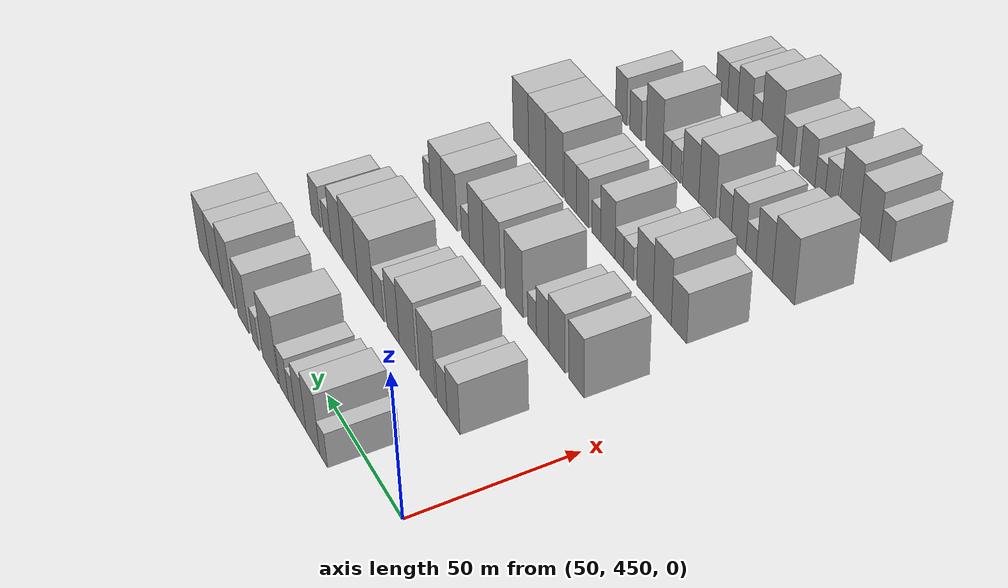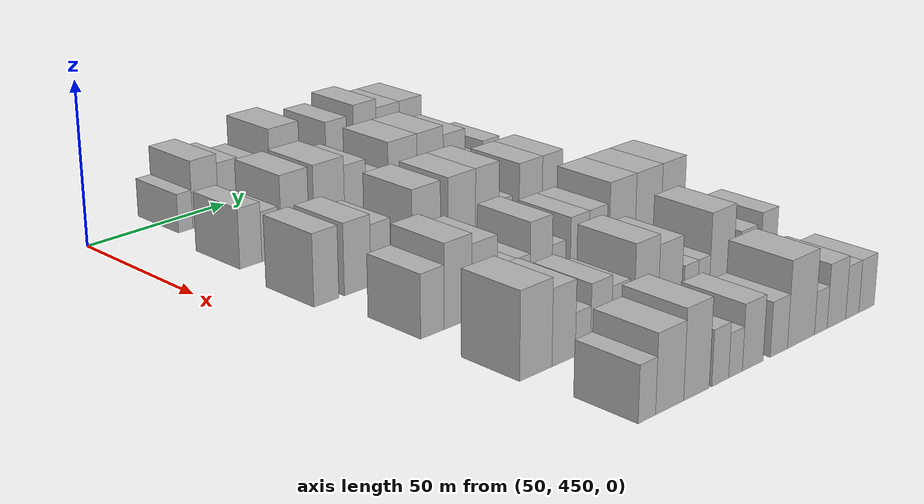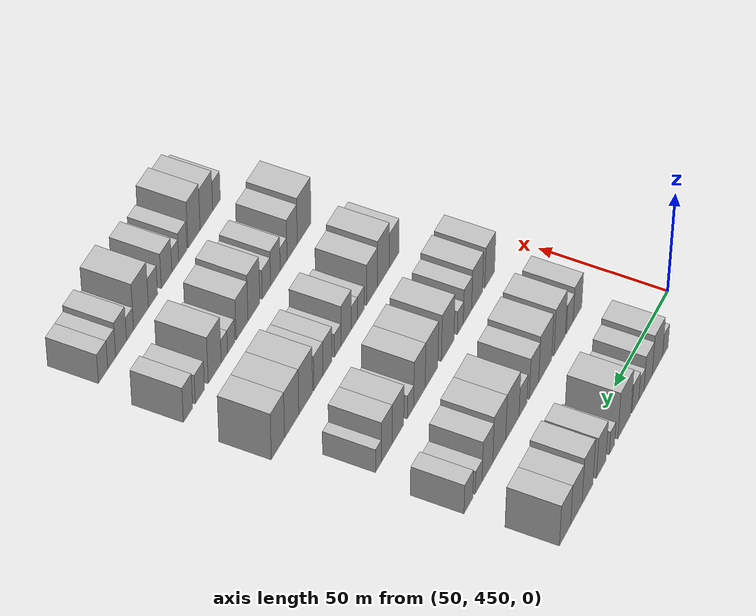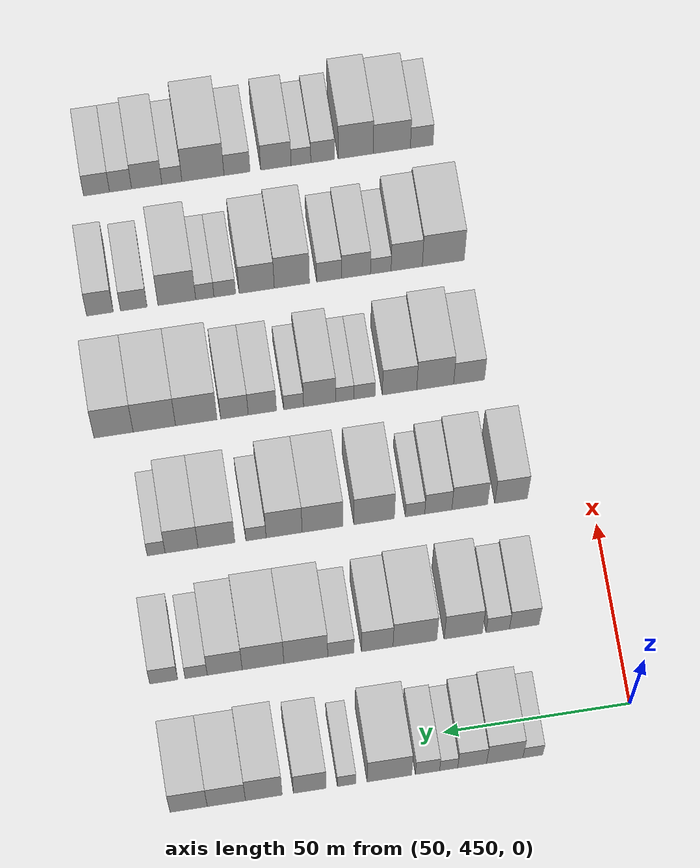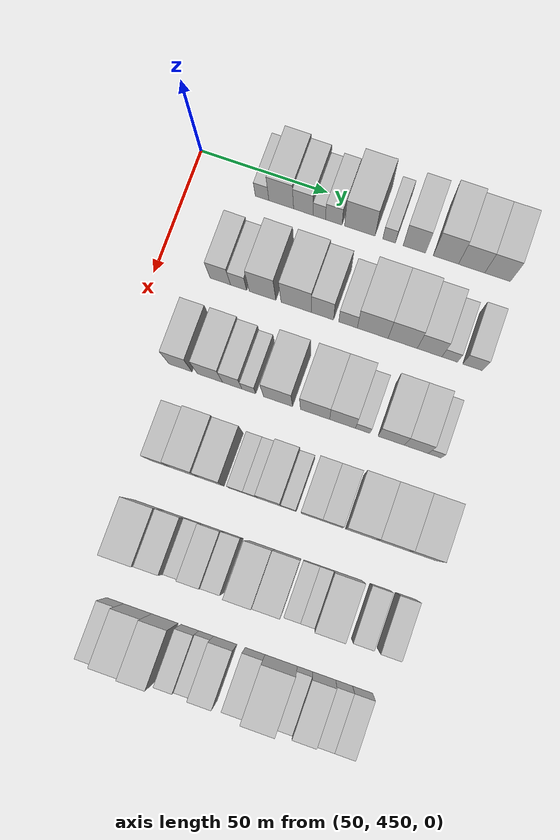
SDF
<sdf version="1.6">
 <world name="default">
  <model name="building_117">
   <static>1</static>
   <pose>50.0000 477.7690 0 0.000000 0.000000 0.000000</pose>
   <link name="link">
    <pose>0 0 6.00 0 0 0</pose>
    <collision name="collision"><geometry><box><size>20.0000 5.3340 12.0000</size></box></geometry></collision>
    <visual name="visual">
     <cast_shadows>0</cast_shadows>
     <geometry><box><size>20.0000 5.3340 12.0000</size></box></geometry>
     <material>
      <script>
       <uri>model://HANNAS_wall/materials/scripts</uri>
       <uri>model://HANNAS_wall/materials/textures</uri>
       <name>vrc/HANNAS_wall</name>
      </script>
     </material>
    </visual>
   </link>
  </model>
  <model name="building_118">
   <static>1</static>
   <pose>50.0000 485.2844 0 0.000000 0.000000 0.000000</pose>
   <link name="link">
    <pose>0 0 10.50 0 0 0</pose>
    <collision name="collision"><geometry><box><size>20.0000 9.6968 21.0000</size></box></geometry></collision>
    <visual name="visual">
     <cast_shadows>0</cast_shadows>
     <geometry><box><size>20.0000 9.6968 21.0000</size></box></geometry>
     <material>
      <script>
       <uri>model://HANNAS_wall/materials/scripts</uri>
       <uri>model://HANNAS_wall/materials/textures</uri>
       <name>vrc/HANNAS_wall</name>
      </script>
     </material>
    </visual>
   </link>
  </model>
  <model name="building_119">
   <static>1</static>
   <pose>50.0000 493.9871 0 0.000000 0.000000 0.000000</pose>
   <link name="link">
    <pose>0 0 9.00 0 0 0</pose>
    <collision name="collision"><geometry><box><size>20.0000 7.7086 18.0000</size></box></geometry></collision>
    <visual name="visual">
     <cast_shadows>0</cast_shadows>
     <geometry><box><size>20.0000 7.7086 18.0000</size></box></geometry>
     <material>
      <script>
       <uri>model://HANNAS_wall/materials/scripts</uri>
       <uri>model://HANNAS_wall/materials/textures</uri>
       <name>vrc/HANNAS_wall</name>
      </script>
     </material>
    </visual>
   </link>
  </model>
  <model name="building_120">
   <static>1</static>
   <pose>50.0000 500.2624 0 0.000000 0.000000 0.000000</pose>
   <link name="link">
    <pose>0 0 6.00 0 0 0</pose>
    <collision name="collision"><geometry><box><size>20.0000 4.8418 12.0000</size></box></geometry></collision>
    <visual name="visual">
     <cast_shadows>0</cast_shadows>
     <geometry><box><size>20.0000 4.8418 12.0000</size></box></geometry>
     <material>
      <script>
       <uri>model://HANNAS_wall/materials/scripts</uri>
       <uri>model://HANNAS_wall/materials/textures</uri>
       <name>vrc/HANNAS_wall</name>
      </script>
     </material>
    </visual>
   </link>
  </model>
  <model name="building_121">
   <static>1</static>
   <pose>50.0000 505.9023 0 0.000000 0.000000 0.000000</pose>
   <link name="link">
    <pose>0 0 7.50 0 0 0</pose>
    <collision name="collision"><geometry><box><size>20.0000 6.4379 15.0000</size></box></geometry></collision>
    <visual name="visual">
     <cast_shadows>0</cast_shadows>
     <geometry><box><size>20.0000 6.4379 15.0000</size></box></geometry>
     <material>
      <script>
       <uri>model://HANNAS_wall/materials/scripts</uri>
       <uri>model://HANNAS_wall/materials/textures</uri>
       <name>vrc/HANNAS_wall</name>
      </script>
     </material>
    </visual>
   </link>
  </model>
  <model name="building_122">
   <static>1</static>
   <pose>50.0000 516.0534 0 0.000000 0.000000 0.000000</pose>
   <link name="link">
    <pose>0 0 12.00 0 0 0</pose>
    <collision name="collision"><geometry><box><size>20.0000 11.8642 24.0000</size></box></geometry></collision>
    <visual name="visual">
     <cast_shadows>0</cast_shadows>
     <geometry><box><size>20.0000 11.8642 24.0000</size></box></geometry>
     <material>
      <script>
       <uri>model://HANNAS_wall/materials/scripts</uri>
       <uri>model://HANNAS_wall/materials/textures</uri>
       <name>vrc/HANNAS_wall</name>
      </script>
     </material>
    </visual>
   </link>
  </model>
  <model name="building_123">
   <static>1</static>
   <pose>50.0000 527.4428 0 0.000000 0.000000 0.000000</pose>
   <link name="link">
    <pose>0 0 6.00 0 0 0</pose>
    <collision name="collision"><geometry><box><size>20.0000 4.9146 12.0000</size></box></geometry></collision>
    <visual name="visual">
     <cast_shadows>0</cast_shadows>
     <geometry><box><size>20.0000 4.9146 12.0000</size></box></geometry>
     <material>
      <script>
       <uri>model://HANNAS_wall/materials/scripts</uri>
       <uri>model://HANNAS_wall/materials/textures</uri>
       <name>vrc/HANNAS_wall</name>
      </script>
     </material>
    </visual>
   </link>
  </model>
  <model name="building_124">
   <static>1</static>
   <pose>50.0000 537.2377 0 0.000000 0.000000 0.000000</pose>
   <link name="link">
    <pose>0 0 10.50 0 0 0</pose>
    <collision name="collision"><geometry><box><size>20.0000 8.6753 21.0000</size></box></geometry></collision>
    <visual name="visual">
     <cast_shadows>0</cast_shadows>
     <geometry><box><size>20.0000 8.6753 21.0000</size></box></geometry>
     <material>
      <script>
       <uri>model://HANNAS_wall/materials/scripts</uri>
       <uri>model://HANNAS_wall/materials/textures</uri>
       <name>vrc/HANNAS_wall</name>
      </script>
     </material>
    </visual>
   </link>
  </model>
  <model name="building_125">
   <static>1</static>
   <pose>50.0000 549.4506 0 0.000000 0.000000 0.000000</pose>
   <link name="link">
    <pose>0 0 12.00 0 0 0</pose>
    <collision name="collision"><geometry><box><size>20.0000 9.7505 24.0000</size></box></geometry></collision>
    <visual name="visual">
     <cast_shadows>0</cast_shadows>
     <geometry><box><size>20.0000 9.7505 24.0000</size></box></geometry>
     <material>
      <script>
       <uri>model://HANNAS_wall/materials/scripts</uri>
       <uri>model://HANNAS_wall/materials/textures</uri>
       <name>vrc/HANNAS_wall</name>
      </script>
     </material>
    </visual>
   </link>
  </model>
  <model name="building_126">
   <static>1</static>
   <pose>50.0000 559.3866 0 0.000000 0.000000 0.000000</pose>
   <link name="link">
    <pose>0 0 10.50 0 0 0</pose>
    <collision name="collision"><geometry><box><size>20.0000 10.1216 21.0000</size></box></geometry></collision>
    <visual name="visual">
     <cast_shadows>0</cast_shadows>
     <geometry><box><size>20.0000 10.1216 21.0000</size></box></geometry>
     <material>
      <script>
       <uri>model://HANNAS_wall/materials/scripts</uri>
       <uri>model://HANNAS_wall/materials/textures</uri>
       <name>vrc/HANNAS_wall</name>
      </script>
     </material>
    </visual>
   </link>
  </model>
  <model name="building_127">
   <static>1</static>
   <pose>50.0000 569.3760 0 0.000000 0.000000 0.000000</pose>
   <link name="link">
    <pose>0 0 10.50 0 0 0</pose>
    <collision name="collision"><geometry><box><size>20.0000 9.8572 21.0000</size></box></geometry></collision>
    <visual name="visual">
     <cast_shadows>0</cast_shadows>
     <geometry><box><size>20.0000 9.8572 21.0000</size></box></geometry>
     <material>
      <script>
       <uri>model://HANNAS_wall/materials/scripts</uri>
       <uri>model://HANNAS_wall/materials/textures</uri>
       <name>vrc/HANNAS_wall</name>
      </script>
     </material>
    </visual>
   </link>
  </model>
  <model name="building_242">
   <static>1</static>
   <pose>85.0000 474.0602 0 0.000000 0.000000 0.000000</pose>
   <link name="link">
    <pose>0 0 9.00 0 0 0</pose>
    <collision name="collision"><geometry><box><size>20.0000 7.9659 18.0000</size></box></geometry></collision>
    <visual name="visual">
     <cast_shadows>0</cast_shadows>
     <geometry><box><size>20.0000 7.9659 18.0000</size></box></geometry>
     <material>
      <script>
       <uri>model://HANNAS_wall/materials/scripts</uri>
       <uri>model://HANNAS_wall/materials/textures</uri>
       <name>vrc/HANNAS_wall</name>
      </script>
     </material>
    </visual>
   </link>
  </model>
  <model name="building_243">
   <static>1</static>
   <pose>85.0000 481.2057 0 0.000000 0.000000 0.000000</pose>
   <link name="link">
    <pose>0 0 7.50 0 0 0</pose>
    <collision name="collision"><geometry><box><size>20.0000 6.3249 15.0000</size></box></geometry></collision>
    <visual name="visual">
     <cast_shadows>0</cast_shadows>
     <geometry><box><size>20.0000 6.3249 15.0000</size></box></geometry>
     <material>
      <script>
       <uri>model://HANNAS_wall/materials/scripts</uri>
       <uri>model://HANNAS_wall/materials/textures</uri>
       <name>vrc/HANNAS_wall</name>
      </script>
     </material>
    </visual>
   </link>
  </model>
  <model name="building_244">
   <static>1</static>
   <pose>85.0000 490.5192 0 0.000000 0.000000 0.000000</pose>
   <link name="link">
    <pose>0 0 12.00 0 0 0</pose>
    <collision name="collision"><geometry><box><size>20.0000 10.3022 24.0000</size></box></geometry></collision>
    <visual name="visual">
     <cast_shadows>0</cast_shadows>
     <geometry><box><size>20.0000 10.3022 24.0000</size></box></geometry>
     <material>
      <script>
       <uri>model://HANNAS_wall/materials/scripts</uri>
       <uri>model://HANNAS_wall/materials/textures</uri>
       <name>vrc/HANNAS_wall</name>
      </script>
     </material>
    </visual>
   </link>
  </model>
  <model name="building_245">
   <static>1</static>
   <pose>85.0000 503.5632 0 0.000000 0.000000 0.000000</pose>
   <link name="link">
    <pose>0 0 12.00 0 0 0</pose>
    <collision name="collision"><geometry><box><size>20.0000 11.7857 24.0000</size></box></geometry></collision>
    <visual name="visual">
     <cast_shadows>0</cast_shadows>
     <geometry><box><size>20.0000 11.7857 24.0000</size></box></geometry>
     <material>
      <script>
       <uri>model://HANNAS_wall/materials/scripts</uri>
       <uri>model://HANNAS_wall/materials/textures</uri>
       <name>vrc/HANNAS_wall</name>
      </script>
     </material>
    </visual>
   </link>
  </model>
  <model name="building_246">
   <static>1</static>
   <pose>85.0000 513.6970 0 0.000000 0.000000 0.000000</pose>
   <link name="link">
    <pose>0 0 10.50 0 0 0</pose>
    <collision name="collision"><geometry><box><size>20.0000 8.4819 21.0000</size></box></geometry></collision>
    <visual name="visual">
     <cast_shadows>0</cast_shadows>
     <geometry><box><size>20.0000 8.4819 21.0000</size></box></geometry>
     <material>
      <script>
       <uri>model://HANNAS_wall/materials/scripts</uri>
       <uri>model://HANNAS_wall/materials/textures</uri>
       <name>vrc/HANNAS_wall</name>
      </script>
     </material>
    </visual>
   </link>
  </model>
  <model name="building_247">
   <static>1</static>
   <pose>85.0000 523.4920 0 0.000000 0.000000 0.000000</pose>
   <link name="link">
    <pose>0 0 7.50 0 0 0</pose>
    <collision name="collision"><geometry><box><size>20.0000 7.1080 15.0000</size></box></geometry></collision>
    <visual name="visual">
     <cast_shadows>0</cast_shadows>
     <geometry><box><size>20.0000 7.1080 15.0000</size></box></geometry>
     <material>
      <script>
       <uri>model://HANNAS_wall/materials/scripts</uri>
       <uri>model://HANNAS_wall/materials/textures</uri>
       <name>vrc/HANNAS_wall</name>
      </script>
     </material>
    </visual>
   </link>
  </model>
  <model name="building_248">
   <static>1</static>
   <pose>85.0000 532.9352 0 0.000000 0.000000 0.000000</pose>
   <link name="link">
    <pose>0 0 12.00 0 0 0</pose>
    <collision name="collision"><geometry><box><size>20.0000 11.7782 24.0000</size></box></geometry></collision>
    <visual name="visual">
     <cast_shadows>0</cast_shadows>
     <geometry><box><size>20.0000 11.7782 24.0000</size></box></geometry>
     <material>
      <script>
       <uri>model://HANNAS_wall/materials/scripts</uri>
       <uri>model://HANNAS_wall/materials/textures</uri>
       <name>vrc/HANNAS_wall</name>
      </script>
     </material>
    </visual>
   </link>
  </model>
  <model name="building_249">
   <static>1</static>
   <pose>85.0000 544.4195 0 0.000000 0.000000 0.000000</pose>
   <link name="link">
    <pose>0 0 12.00 0 0 0</pose>
    <collision name="collision"><geometry><box><size>20.0000 11.1904 24.0000</size></box></geometry></collision>
    <visual name="visual">
     <cast_shadows>0</cast_shadows>
     <geometry><box><size>20.0000 11.1904 24.0000</size></box></geometry>
     <material>
      <script>
       <uri>model://HANNAS_wall/materials/scripts</uri>
       <uri>model://HANNAS_wall/materials/textures</uri>
       <name>vrc/HANNAS_wall</name>
      </script>
     </material>
    </visual>
   </link>
  </model>
  <model name="building_250">
   <static>1</static>
   <pose>85.0000 554.6979 0 0.000000 0.000000 0.000000</pose>
   <link name="link">
    <pose>0 0 10.50 0 0 0</pose>
    <collision name="collision"><geometry><box><size>20.0000 9.3665 21.0000</size></box></geometry></collision>
    <visual name="visual">
     <cast_shadows>0</cast_shadows>
     <geometry><box><size>20.0000 9.3665 21.0000</size></box></geometry>
     <material>
      <script>
       <uri>model://HANNAS_wall/materials/scripts</uri>
       <uri>model://HANNAS_wall/materials/textures</uri>
       <name>vrc/HANNAS_wall</name>
      </script>
     </material>
    </visual>
   </link>
  </model>
  <model name="building_251">
   <static>1</static>
   <pose>85.0000 562.3517 0 0.000000 0.000000 0.000000</pose>
   <link name="link">
    <pose>0 0 6.00 0 0 0</pose>
    <collision name="collision"><geometry><box><size>20.0000 5.9411 12.0000</size></box></geometry></collision>
    <visual name="visual">
     <cast_shadows>0</cast_shadows>
     <geometry><box><size>20.0000 5.9411 12.0000</size></box></geometry>
     <material>
      <script>
       <uri>model://HANNAS_wall/materials/scripts</uri>
       <uri>model://HANNAS_wall/materials/textures</uri>
       <name>vrc/HANNAS_wall</name>
      </script>
     </material>
    </visual>
   </link>
  </model>
  <model name="building_252">
   <static>1</static>
   <pose>85.0000 571.0603 0 0.000000 0.000000 0.000000</pose>
   <link name="link">
    <pose>0 0 7.50 0 0 0</pose>
    <collision name="collision"><geometry><box><size>20.0000 7.4762 15.0000</size></box></geometry></collision>
    <visual name="visual">
     <cast_shadows>0</cast_shadows>
     <geometry><box><size>20.0000 7.4762 15.0000</size></box></geometry>
     <material>
      <script>
       <uri>model://HANNAS_wall/materials/scripts</uri>
       <uri>model://HANNAS_wall/materials/textures</uri>
       <name>vrc/HANNAS_wall</name>
      </script>
     </material>
    </visual>
   </link>
  </model>
  <model name="building_370">
   <static>1</static>
   <pose>120.0000 471.6100 0 0.000000 0.000000 0.000000</pose>
   <link name="link">
    <pose>0 0 10.50 0 0 0</pose>
    <collision name="collision"><geometry><box><size>20.0000 8.8849 21.0000</size></box></geometry></collision>
    <visual name="visual">
     <cast_shadows>0</cast_shadows>
     <geometry><box><size>20.0000 8.8849 21.0000</size></box></geometry>
     <material>
      <script>
       <uri>model://HANNAS_wall/materials/scripts</uri>
       <uri>model://HANNAS_wall/materials/textures</uri>
       <name>vrc/HANNAS_wall</name>
      </script>
     </material>
    </visual>
   </link>
  </model>
  <model name="building_371">
   <static>1</static>
   <pose>120.0000 482.9219 0 0.000000 0.000000 0.000000</pose>
   <link name="link">
    <pose>0 0 10.50 0 0 0</pose>
    <collision name="collision"><geometry><box><size>20.0000 9.7390 21.0000</size></box></geometry></collision>
    <visual name="visual">
     <cast_shadows>0</cast_shadows>
     <geometry><box><size>20.0000 9.7390 21.0000</size></box></geometry>
     <material>
      <script>
       <uri>model://HANNAS_wall/materials/scripts</uri>
       <uri>model://HANNAS_wall/materials/textures</uri>
       <name>vrc/HANNAS_wall</name>
      </script>
     </material>
    </visual>
   </link>
  </model>
  <model name="building_372">
   <static>1</static>
   <pose>120.0000 491.4858 0 0.000000 0.000000 0.000000</pose>
   <link name="link">
    <pose>0 0 9.00 0 0 0</pose>
    <collision name="collision"><geometry><box><size>20.0000 7.3886 18.0000</size></box></geometry></collision>
    <visual name="visual">
     <cast_shadows>0</cast_shadows>
     <geometry><box><size>20.0000 7.3886 18.0000</size></box></geometry>
     <material>
      <script>
       <uri>model://HANNAS_wall/materials/scripts</uri>
       <uri>model://HANNAS_wall/materials/textures</uri>
       <name>vrc/HANNAS_wall</name>
      </script>
     </material>
    </visual>
   </link>
  </model>
  <model name="building_373">
   <static>1</static>
   <pose>120.0000 497.8209 0 0.000000 0.000000 0.000000</pose>
   <link name="link">
    <pose>0 0 6.00 0 0 0</pose>
    <collision name="collision"><geometry><box><size>20.0000 5.2816 12.0000</size></box></geometry></collision>
    <visual name="visual">
     <cast_shadows>0</cast_shadows>
     <geometry><box><size>20.0000 5.2816 12.0000</size></box></geometry>
     <material>
      <script>
       <uri>model://HANNAS_wall/materials/scripts</uri>
       <uri>model://HANNAS_wall/materials/textures</uri>
       <name>vrc/HANNAS_wall</name>
      </script>
     </material>
    </visual>
   </link>
  </model>
  <model name="building_374">
   <static>1</static>
   <pose>120.0000 508.9760 0 0.000000 0.000000 0.000000</pose>
   <link name="link">
    <pose>0 0 12.00 0 0 0</pose>
    <collision name="collision"><geometry><box><size>20.0000 11.0288 24.0000</size></box></geometry></collision>
    <visual name="visual">
     <cast_shadows>0</cast_shadows>
     <geometry><box><size>20.0000 11.0288 24.0000</size></box></geometry>
     <material>
      <script>
       <uri>model://HANNAS_wall/materials/scripts</uri>
       <uri>model://HANNAS_wall/materials/textures</uri>
       <name>vrc/HANNAS_wall</name>
      </script>
     </material>
    </visual>
   </link>
  </model>
  <model name="building_375">
   <static>1</static>
   <pose>120.0000 523.0236 0 0.000000 0.000000 0.000000</pose>
   <link name="link">
    <pose>0 0 12.00 0 0 0</pose>
    <collision name="collision"><geometry><box><size>20.0000 11.0663 24.0000</size></box></geometry></collision>
    <visual name="visual">
     <cast_shadows>0</cast_shadows>
     <geometry><box><size>20.0000 11.0663 24.0000</size></box></geometry>
     <material>
      <script>
       <uri>model://HANNAS_wall/materials/scripts</uri>
       <uri>model://HANNAS_wall/materials/textures</uri>
       <name>vrc/HANNAS_wall</name>
      </script>
     </material>
    </visual>
   </link>
  </model>
  <model name="building_376">
   <static>1</static>
   <pose>120.0000 533.4493 0 0.000000 0.000000 0.000000</pose>
   <link name="link">
    <pose>0 0 12.00 0 0 0</pose>
    <collision name="collision"><geometry><box><size>20.0000 9.7852 24.0000</size></box></geometry></collision>
    <visual name="visual">
     <cast_shadows>0</cast_shadows>
     <geometry><box><size>20.0000 9.7852 24.0000</size></box></geometry>
     <material>
      <script>
       <uri>model://HANNAS_wall/materials/scripts</uri>
       <uri>model://HANNAS_wall/materials/textures</uri>
       <name>vrc/HANNAS_wall</name>
      </script>
     </material>
    </visual>
   </link>
  </model>
  <model name="building_377">
   <static>1</static>
   <pose>120.0000 541.0842 0 0.000000 0.000000 0.000000</pose>
   <link name="link">
    <pose>0 0 6.00 0 0 0</pose>
    <collision name="collision"><geometry><box><size>20.0000 5.4846 12.0000</size></box></geometry></collision>
    <visual name="visual">
     <cast_shadows>0</cast_shadows>
     <geometry><box><size>20.0000 5.4846 12.0000</size></box></geometry>
     <material>
      <script>
       <uri>model://HANNAS_wall/materials/scripts</uri>
       <uri>model://HANNAS_wall/materials/textures</uri>
       <name>vrc/HANNAS_wall</name>
      </script>
     </material>
    </visual>
   </link>
  </model>
  <model name="building_378">
   <static>1</static>
   <pose>120.0000 551.8128 0 0.000000 0.000000 0.000000</pose>
   <link name="link">
    <pose>0 0 10.50 0 0 0</pose>
    <collision name="collision"><geometry><box><size>20.0000 9.9726 21.0000</size></box></geometry></collision>
    <visual name="visual">
     <cast_shadows>0</cast_shadows>
     <geometry><box><size>20.0000 9.9726 21.0000</size></box></geometry>
     <material>
      <script>
       <uri>model://HANNAS_wall/materials/scripts</uri>
       <uri>model://HANNAS_wall/materials/textures</uri>
       <name>vrc/HANNAS_wall</name>
      </script>
     </material>
    </visual>
   </link>
  </model>
  <model name="building_379">
   <static>1</static>
   <pose>120.0000 561.2743 0 0.000000 0.000000 0.000000</pose>
   <link name="link">
    <pose>0 0 10.50 0 0 0</pose>
    <collision name="collision"><geometry><box><size>20.0000 8.9505 21.0000</size></box></geometry></collision>
    <visual name="visual">
     <cast_shadows>0</cast_shadows>
     <geometry><box><size>20.0000 8.9505 21.0000</size></box></geometry>
     <material>
      <script>
       <uri>model://HANNAS_wall/materials/scripts</uri>
       <uri>model://HANNAS_wall/materials/textures</uri>
       <name>vrc/HANNAS_wall</name>
      </script>
     </material>
    </visual>
   </link>
  </model>
  <model name="building_380">
   <static>1</static>
   <pose>120.0000 568.1670 0 0.000000 0.000000 0.000000</pose>
   <link name="link">
    <pose>0 0 6.00 0 0 0</pose>
    <collision name="collision"><geometry><box><size>20.0000 4.8349 12.0000</size></box></geometry></collision>
    <visual name="visual">
     <cast_shadows>0</cast_shadows>
     <geometry><box><size>20.0000 4.8349 12.0000</size></box></geometry>
     <material>
      <script>
       <uri>model://HANNAS_wall/materials/scripts</uri>
       <uri>model://HANNAS_wall/materials/textures</uri>
       <name>vrc/HANNAS_wall</name>
      </script>
     </material>
    </visual>
   </link>
  </model>
  <model name="building_499">
   <static>1</static>
   <pose>155.0000 477.2338 0 0.000000 0.000000 0.000000</pose>
   <link name="link">
    <pose>0 0 9.00 0 0 0</pose>
    <collision name="collision"><geometry><box><size>20.0000 8.5115 18.0000</size></box></geometry></collision>
    <visual name="visual">
     <cast_shadows>0</cast_shadows>
     <geometry><box><size>20.0000 8.5115 18.0000</size></box></geometry>
     <material>
      <script>
       <uri>model://HANNAS_wall/materials/scripts</uri>
       <uri>model://HANNAS_wall/materials/textures</uri>
       <name>vrc/HANNAS_wall</name>
      </script>
     </material>
    </visual>
   </link>
  </model>
  <model name="building_500">
   <static>1</static>
   <pose>155.0000 486.5743 0 0.000000 0.000000 0.000000</pose>
   <link name="link">
    <pose>0 0 12.00 0 0 0</pose>
    <collision name="collision"><geometry><box><size>20.0000 10.1696 24.0000</size></box></geometry></collision>
    <visual name="visual">
     <cast_shadows>0</cast_shadows>
     <geometry><box><size>20.0000 10.1696 24.0000</size></box></geometry>
     <material>
      <script>
       <uri>model://HANNAS_wall/materials/scripts</uri>
       <uri>model://HANNAS_wall/materials/textures</uri>
       <name>vrc/HANNAS_wall</name>
      </script>
     </material>
    </visual>
   </link>
  </model>
  <model name="building_501">
   <static>1</static>
   <pose>155.0000 496.3923 0 0.000000 0.000000 0.000000</pose>
   <link name="link">
    <pose>0 0 10.50 0 0 0</pose>
    <collision name="collision"><geometry><box><size>20.0000 9.4664 21.0000</size></box></geometry></collision>
    <visual name="visual">
     <cast_shadows>0</cast_shadows>
     <geometry><box><size>20.0000 9.4664 21.0000</size></box></geometry>
     <material>
      <script>
       <uri>model://HANNAS_wall/materials/scripts</uri>
       <uri>model://HANNAS_wall/materials/textures</uri>
       <name>vrc/HANNAS_wall</name>
      </script>
     </material>
    </visual>
   </link>
  </model>
  <model name="building_502">
   <static>1</static>
   <pose>155.0000 506.0268 0 0.000000 0.000000 0.000000</pose>
   <link name="link">
    <pose>0 0 6.00 0 0 0</pose>
    <collision name="collision"><geometry><box><size>20.0000 5.8025 12.0000</size></box></geometry></collision>
    <visual name="visual">
     <cast_shadows>0</cast_shadows>
     <geometry><box><size>20.0000 5.8025 12.0000</size></box></geometry>
     <material>
      <script>
       <uri>model://HANNAS_wall/materials/scripts</uri>
       <uri>model://HANNAS_wall/materials/textures</uri>
       <name>vrc/HANNAS_wall</name>
      </script>
     </material>
    </visual>
   </link>
  </model>
  <model name="building_503">
   <static>1</static>
   <pose>155.0000 511.4563 0 0.000000 0.000000 0.000000</pose>
   <link name="link">
    <pose>0 0 6.00 0 0 0</pose>
    <collision name="collision"><geometry><box><size>20.0000 5.0566 12.0000</size></box></geometry></collision>
    <visual name="visual">
     <cast_shadows>0</cast_shadows>
     <geometry><box><size>20.0000 5.0566 12.0000</size></box></geometry>
     <material>
      <script>
       <uri>model://HANNAS_wall/materials/scripts</uri>
       <uri>model://HANNAS_wall/materials/textures</uri>
       <name>vrc/HANNAS_wall</name>
      </script>
     </material>
    </visual>
   </link>
  </model>
  <model name="building_504">
   <static>1</static>
   <pose>155.0000 518.3938 0 0.000000 0.000000 0.000000</pose>
   <link name="link">
    <pose>0 0 10.50 0 0 0</pose>
    <collision name="collision"><geometry><box><size>20.0000 8.8184 21.0000</size></box></geometry></collision>
    <visual name="visual">
     <cast_shadows>0</cast_shadows>
     <geometry><box><size>20.0000 8.8184 21.0000</size></box></geometry>
     <material>
      <script>
       <uri>model://HANNAS_wall/materials/scripts</uri>
       <uri>model://HANNAS_wall/materials/textures</uri>
       <name>vrc/HANNAS_wall</name>
      </script>
     </material>
    </visual>
   </link>
  </model>
  <model name="building_505">
   <static>1</static>
   <pose>155.0000 525.5357 0 0.000000 0.000000 0.000000</pose>
   <link name="link">
    <pose>0 0 6.00 0 0 0</pose>
    <collision name="collision"><geometry><box><size>20.0000 5.4654 12.0000</size></box></geometry></collision>
    <visual name="visual">
     <cast_shadows>0</cast_shadows>
     <geometry><box><size>20.0000 5.4654 12.0000</size></box></geometry>
     <material>
      <script>
       <uri>model://HANNAS_wall/materials/scripts</uri>
       <uri>model://HANNAS_wall/materials/textures</uri>
       <name>vrc/HANNAS_wall</name>
      </script>
     </material>
    </visual>
   </link>
  </model>
  <model name="building_506">
   <static>1</static>
   <pose>155.0000 534.1446 0 0.000000 0.000000 0.000000</pose>
   <link name="link">
    <pose>0 0 9.00 0 0 0</pose>
    <collision name="collision"><geometry><box><size>20.0000 7.7524 18.0000</size></box></geometry></collision>
    <visual name="visual">
     <cast_shadows>0</cast_shadows>
     <geometry><box><size>20.0000 7.7524 18.0000</size></box></geometry>
     <material>
      <script>
       <uri>model://HANNAS_wall/materials/scripts</uri>
       <uri>model://HANNAS_wall/materials/textures</uri>
       <name>vrc/HANNAS_wall</name>
      </script>
     </material>
    </visual>
   </link>
  </model>
  <model name="building_507">
   <static>1</static>
   <pose>155.0000 541.7945 0 0.000000 0.000000 0.000000</pose>
   <link name="link">
    <pose>0 0 9.00 0 0 0</pose>
    <collision name="collision"><geometry><box><size>20.0000 7.5474 18.0000</size></box></geometry></collision>
    <visual name="visual">
     <cast_shadows>0</cast_shadows>
     <geometry><box><size>20.0000 7.5474 18.0000</size></box></geometry>
     <material>
      <script>
       <uri>model://HANNAS_wall/materials/scripts</uri>
       <uri>model://HANNAS_wall/materials/textures</uri>
       <name>vrc/HANNAS_wall</name>
      </script>
     </material>
    </visual>
   </link>
  </model>
  <model name="building_508">
   <static>1</static>
   <pose>155.0000 552.2539 0 0.000000 0.000000 0.000000</pose>
   <link name="link">
    <pose>0 0 12.00 0 0 0</pose>
    <collision name="collision"><geometry><box><size>20.0000 11.3714 24.0000</size></box></geometry></collision>
    <visual name="visual">
     <cast_shadows>0</cast_shadows>
     <geometry><box><size>20.0000 11.3714 24.0000</size></box></geometry>
     <material>
      <script>
       <uri>model://HANNAS_wall/materials/scripts</uri>
       <uri>model://HANNAS_wall/materials/textures</uri>
       <name>vrc/HANNAS_wall</name>
      </script>
     </material>
    </visual>
   </link>
  </model>
  <model name="building_509">
   <static>1</static>
   <pose>155.0000 563.7401 0 0.000000 0.000000 0.000000</pose>
   <link name="link">
    <pose>0 0 12.00 0 0 0</pose>
    <collision name="collision"><geometry><box><size>20.0000 11.6010 24.0000</size></box></geometry></collision>
    <visual name="visual">
     <cast_shadows>0</cast_shadows>
     <geometry><box><size>20.0000 11.6010 24.0000</size></box></geometry>
     <material>
      <script>
       <uri>model://HANNAS_wall/materials/scripts</uri>
       <uri>model://HANNAS_wall/materials/textures</uri>
       <name>vrc/HANNAS_wall</name>
      </script>
     </material>
    </visual>
   </link>
  </model>
  <model name="building_510">
   <static>1</static>
   <pose>155.0000 574.9056 0 0.000000 0.000000 0.000000</pose>
   <link name="link">
    <pose>0 0 12.00 0 0 0</pose>
    <collision name="collision"><geometry><box><size>20.0000 10.7301 24.0000</size></box></geometry></collision>
    <visual name="visual">
     <cast_shadows>0</cast_shadows>
     <geometry><box><size>20.0000 10.7301 24.0000</size></box></geometry>
     <material>
      <script>
       <uri>model://HANNAS_wall/materials/scripts</uri>
       <uri>model://HANNAS_wall/materials/textures</uri>
       <name>vrc/HANNAS_wall</name>
      </script>
     </material>
    </visual>
   </link>
  </model>
  <model name="building_625">
   <static>1</static>
   <pose>190.0000 478.5708 0 0.000000 0.000000 0.000000</pose>
   <link name="link">
    <pose>0 0 12.00 0 0 0</pose>
    <collision name="collision"><geometry><box><size>20.0000 11.6802 24.0000</size></box></geometry></collision>
    <visual name="visual">
     <cast_shadows>0</cast_shadows>
     <geometry><box><size>20.0000 11.6802 24.0000</size></box></geometry>
     <material>
      <script>
       <uri>model://HANNAS_wall/materials/scripts</uri>
       <uri>model://HANNAS_wall/materials/textures</uri>
       <name>vrc/HANNAS_wall</name>
      </script>
     </material>
    </visual>
   </link>
  </model>
  <model name="building_626">
   <static>1</static>
   <pose>190.0000 488.7640 0 0.000000 0.000000 0.000000</pose>
   <link name="link">
    <pose>0 0 10.50 0 0 0</pose>
    <collision name="collision"><geometry><box><size>20.0000 8.7062 21.0000</size></box></geometry></collision>
    <visual name="visual">
     <cast_shadows>0</cast_shadows>
     <geometry><box><size>20.0000 8.7062 21.0000</size></box></geometry>
     <material>
      <script>
       <uri>model://HANNAS_wall/materials/scripts</uri>
       <uri>model://HANNAS_wall/materials/textures</uri>
       <name>vrc/HANNAS_wall</name>
      </script>
     </material>
    </visual>
   </link>
  </model>
  <model name="building_627">
   <static>1</static>
   <pose>190.0000 495.9846 0 0.000000 0.000000 0.000000</pose>
   <link name="link">
    <pose>0 0 6.00 0 0 0</pose>
    <collision name="collision"><geometry><box><size>20.0000 5.7349 12.0000</size></box></geometry></collision>
    <visual name="visual">
     <cast_shadows>0</cast_shadows>
     <geometry><box><size>20.0000 5.7349 12.0000</size></box></geometry>
     <material>
      <script>
       <uri>model://HANNAS_wall/materials/scripts</uri>
       <uri>model://HANNAS_wall/materials/textures</uri>
       <name>vrc/HANNAS_wall</name>
      </script>
     </material>
    </visual>
   </link>
  </model>
  <model name="building_628">
   <static>1</static>
   <pose>190.0000 502.8615 0 0.000000 0.000000 0.000000</pose>
   <link name="link">
    <pose>0 0 9.00 0 0 0</pose>
    <collision name="collision"><geometry><box><size>20.0000 8.0189 18.0000</size></box></geometry></collision>
    <visual name="visual">
     <cast_shadows>0</cast_shadows>
     <geometry><box><size>20.0000 8.0189 18.0000</size></box></geometry>
     <material>
      <script>
       <uri>model://HANNAS_wall/materials/scripts</uri>
       <uri>model://HANNAS_wall/materials/textures</uri>
       <name>vrc/HANNAS_wall</name>
      </script>
     </material>
    </visual>
   </link>
  </model>
  <model name="building_629">
   <static>1</static>
   <pose>190.0000 510.3428 0 0.000000 0.000000 0.000000</pose>
   <link name="link">
    <pose>0 0 7.50 0 0 0</pose>
    <collision name="collision"><geometry><box><size>20.0000 6.9437 15.0000</size></box></geometry></collision>
    <visual name="visual">
     <cast_shadows>0</cast_shadows>
     <geometry><box><size>20.0000 6.9437 15.0000</size></box></geometry>
     <material>
      <script>
       <uri>model://HANNAS_wall/materials/scripts</uri>
       <uri>model://HANNAS_wall/materials/textures</uri>
       <name>vrc/HANNAS_wall</name>
      </script>
     </material>
    </visual>
   </link>
  </model>
  <model name="building_630">
   <static>1</static>
   <pose>190.0000 520.6945 0 0.000000 0.000000 0.000000</pose>
   <link name="link">
    <pose>0 0 12.00 0 0 0</pose>
    <collision name="collision"><geometry><box><size>20.0000 9.7597 24.0000</size></box></geometry></collision>
    <visual name="visual">
     <cast_shadows>0</cast_shadows>
     <geometry><box><size>20.0000 9.7597 24.0000</size></box></geometry>
     <material>
      <script>
       <uri>model://HANNAS_wall/materials/scripts</uri>
       <uri>model://HANNAS_wall/materials/textures</uri>
       <name>vrc/HANNAS_wall</name>
      </script>
     </material>
    </visual>
   </link>
  </model>
  <model name="building_631">
   <static>1</static>
   <pose>190.0000 530.4482 0 0.000000 0.000000 0.000000</pose>
   <link name="link">
    <pose>0 0 10.50 0 0 0</pose>
    <collision name="collision"><geometry><box><size>20.0000 9.7476 21.0000</size></box></geometry></collision>
    <visual name="visual">
     <cast_shadows>0</cast_shadows>
     <geometry><box><size>20.0000 9.7476 21.0000</size></box></geometry>
     <material>
      <script>
       <uri>model://HANNAS_wall/materials/scripts</uri>
       <uri>model://HANNAS_wall/materials/textures</uri>
       <name>vrc/HANNAS_wall</name>
      </script>
     </material>
    </visual>
   </link>
  </model>
  <model name="building_632">
   <static>1</static>
   <pose>190.0000 539.3188 0 0.000000 0.000000 0.000000</pose>
   <link name="link">
    <pose>0 0 6.00 0 0 0</pose>
    <collision name="collision"><geometry><box><size>20.0000 5.9937 12.0000</size></box></geometry></collision>
    <visual name="visual">
     <cast_shadows>0</cast_shadows>
     <geometry><box><size>20.0000 5.9937 12.0000</size></box></geometry>
     <material>
      <script>
       <uri>model://HANNAS_wall/materials/scripts</uri>
       <uri>model://HANNAS_wall/materials/textures</uri>
       <name>vrc/HANNAS_wall</name>
      </script>
     </material>
    </visual>
   </link>
  </model>
  <model name="building_633">
   <static>1</static>
   <pose>190.0000 544.8415 0 0.000000 0.000000 0.000000</pose>
   <link name="link">
    <pose>0 0 6.00 0 0 0</pose>
    <collision name="collision"><geometry><box><size>20.0000 5.0516 12.0000</size></box></geometry></collision>
    <visual name="visual">
     <cast_shadows>0</cast_shadows>
     <geometry><box><size>20.0000 5.0516 12.0000</size></box></geometry>
     <material>
      <script>
       <uri>model://HANNAS_wall/materials/scripts</uri>
       <uri>model://HANNAS_wall/materials/textures</uri>
       <name>vrc/HANNAS_wall</name>
      </script>
     </material>
    </visual>
   </link>
  </model>
  <model name="building_634">
   <static>1</static>
   <pose>190.0000 552.6009 0 0.000000 0.000000 0.000000</pose>
   <link name="link">
    <pose>0 0 12.00 0 0 0</pose>
    <collision name="collision"><geometry><box><size>20.0000 10.4672 24.0000</size></box></geometry></collision>
    <visual name="visual">
     <cast_shadows>0</cast_shadows>
     <geometry><box><size>20.0000 10.4672 24.0000</size></box></geometry>
     <material>
      <script>
       <uri>model://HANNAS_wall/materials/scripts</uri>
       <uri>model://HANNAS_wall/materials/textures</uri>
       <name>vrc/HANNAS_wall</name>
      </script>
     </material>
    </visual>
   </link>
  </model>
  <model name="building_635">
   <static>1</static>
   <pose>190.0000 564.5149 0 0.000000 0.000000 0.000000</pose>
   <link name="link">
    <pose>0 0 7.50 0 0 0</pose>
    <collision name="collision"><geometry><box><size>20.0000 7.3609 15.0000</size></box></geometry></collision>
    <visual name="visual">
     <cast_shadows>0</cast_shadows>
     <geometry><box><size>20.0000 7.3609 15.0000</size></box></geometry>
     <material>
      <script>
       <uri>model://HANNAS_wall/materials/scripts</uri>
       <uri>model://HANNAS_wall/materials/textures</uri>
       <name>vrc/HANNAS_wall</name>
      </script>
     </material>
    </visual>
   </link>
  </model>
  <model name="building_636">
   <static>1</static>
   <pose>190.0000 573.8761 0 0.000000 0.000000 0.000000</pose>
   <link name="link">
    <pose>0 0 9.00 0 0 0</pose>
    <collision name="collision"><geometry><box><size>20.0000 7.3615 18.0000</size></box></geometry></collision>
    <visual name="visual">
     <cast_shadows>0</cast_shadows>
     <geometry><box><size>20.0000 7.3615 18.0000</size></box></geometry>
     <material>
      <script>
       <uri>model://HANNAS_wall/materials/scripts</uri>
       <uri>model://HANNAS_wall/materials/textures</uri>
       <name>vrc/HANNAS_wall</name>
      </script>
     </material>
    </visual>
   </link>
  </model>
  <model name="building_750">
   <static>1</static>
   <pose>225.0000 478.8664 0 0.000000 0.000000 0.000000</pose>
   <link name="link">
    <pose>0 0 7.50 0 0 0</pose>
    <collision name="collision"><geometry><box><size>20.0000 6.3606 15.0000</size></box></geometry></collision>
    <visual name="visual">
     <cast_shadows>0</cast_shadows>
     <geometry><box><size>20.0000 6.3606 15.0000</size></box></geometry>
     <material>
      <script>
       <uri>model://HANNAS_wall/materials/scripts</uri>
       <uri>model://HANNAS_wall/materials/textures</uri>
       <name>vrc/HANNAS_wall</name>
      </script>
     </material>
    </visual>
   </link>
  </model>
  <model name="building_751">
   <static>1</static>
   <pose>225.0000 487.2875 0 0.000000 0.000000 0.000000</pose>
   <link name="link">
    <pose>0 0 10.50 0 0 0</pose>
    <collision name="collision"><geometry><box><size>20.0000 10.4816 21.0000</size></box></geometry></collision>
    <visual name="visual">
     <cast_shadows>0</cast_shadows>
     <geometry><box><size>20.0000 10.4816 21.0000</size></box></geometry>
     <material>
      <script>
       <uri>model://HANNAS_wall/materials/scripts</uri>
       <uri>model://HANNAS_wall/materials/textures</uri>
       <name>vrc/HANNAS_wall</name>
      </script>
     </material>
    </visual>
   </link>
  </model>
  <model name="building_752">
   <static>1</static>
   <pose>225.0000 497.4591 0 0.000000 0.000000 0.000000</pose>
   <link name="link">
    <pose>0 0 12.00 0 0 0</pose>
    <collision name="collision"><geometry><box><size>20.0000 9.8615 24.0000</size></box></geometry></collision>
    <visual name="visual">
     <cast_shadows>0</cast_shadows>
     <geometry><box><size>20.0000 9.8615 24.0000</size></box></geometry>
     <material>
      <script>
       <uri>model://HANNAS_wall/materials/scripts</uri>
       <uri>model://HANNAS_wall/materials/textures</uri>
       <name>vrc/HANNAS_wall</name>
      </script>
     </material>
    </visual>
   </link>
  </model>
  <model name="building_753">
   <static>1</static>
   <pose>225.0000 506.7206 0 0.000000 0.000000 0.000000</pose>
   <link name="link">
    <pose>0 0 7.50 0 0 0</pose>
    <collision name="collision"><geometry><box><size>20.0000 6.6616 15.0000</size></box></geometry></collision>
    <visual name="visual">
     <cast_shadows>0</cast_shadows>
     <geometry><box><size>20.0000 6.6616 15.0000</size></box></geometry>
     <material>
      <script>
       <uri>model://HANNAS_wall/materials/scripts</uri>
       <uri>model://HANNAS_wall/materials/textures</uri>
       <name>vrc/HANNAS_wall</name>
      </script>
     </material>
    </visual>
   </link>
  </model>
  <model name="building_754">
   <static>1</static>
   <pose>225.0000 512.8163 0 0.000000 0.000000 0.000000</pose>
   <link name="link">
    <pose>0 0 6.00 0 0 0</pose>
    <collision name="collision"><geometry><box><size>20.0000 5.5297 12.0000</size></box></geometry></collision>
    <visual name="visual">
     <cast_shadows>0</cast_shadows>
     <geometry><box><size>20.0000 5.5297 12.0000</size></box></geometry>
     <material>
      <script>
       <uri>model://HANNAS_wall/materials/scripts</uri>
       <uri>model://HANNAS_wall/materials/textures</uri>
       <name>vrc/HANNAS_wall</name>
      </script>
     </material>
    </visual>
   </link>
  </model>
  <model name="building_755">
   <static>1</static>
   <pose>225.0000 519.8528 0 0.000000 0.000000 0.000000</pose>
   <link name="link">
    <pose>0 0 9.00 0 0 0</pose>
    <collision name="collision"><geometry><box><size>20.0000 8.5433 18.0000</size></box></geometry></collision>
    <visual name="visual">
     <cast_shadows>0</cast_shadows>
     <geometry><box><size>20.0000 8.5433 18.0000</size></box></geometry>
     <material>
      <script>
       <uri>model://HANNAS_wall/materials/scripts</uri>
       <uri>model://HANNAS_wall/materials/textures</uri>
       <name>vrc/HANNAS_wall</name>
      </script>
     </material>
    </visual>
   </link>
  </model>
  <model name="building_756">
   <static>1</static>
   <pose>225.0000 530.7680 0 0.000000 0.000000 0.000000</pose>
   <link name="link">
    <pose>0 0 7.50 0 0 0</pose>
    <collision name="collision"><geometry><box><size>20.0000 7.2872 15.0000</size></box></geometry></collision>
    <visual name="visual">
     <cast_shadows>0</cast_shadows>
     <geometry><box><size>20.0000 7.2872 15.0000</size></box></geometry>
     <material>
      <script>
       <uri>model://HANNAS_wall/materials/scripts</uri>
       <uri>model://HANNAS_wall/materials/textures</uri>
       <name>vrc/HANNAS_wall</name>
      </script>
     </material>
    </visual>
   </link>
  </model>
  <model name="building_757">
   <static>1</static>
   <pose>225.0000 540.3108 0 0.000000 0.000000 0.000000</pose>
   <link name="link">
    <pose>0 0 12.00 0 0 0</pose>
    <collision name="collision"><geometry><box><size>20.0000 11.7984 24.0000</size></box></geometry></collision>
    <visual name="visual">
     <cast_shadows>0</cast_shadows>
     <geometry><box><size>20.0000 11.7984 24.0000</size></box></geometry>
     <material>
      <script>
       <uri>model://HANNAS_wall/materials/scripts</uri>
       <uri>model://HANNAS_wall/materials/textures</uri>
       <name>vrc/HANNAS_wall</name>
      </script>
     </material>
    </visual>
   </link>
  </model>
  <model name="building_758">
   <static>1</static>
   <pose>225.0000 549.0118 0 0.000000 0.000000 0.000000</pose>
   <link name="link">
    <pose>0 0 6.00 0 0 0</pose>
    <collision name="collision"><geometry><box><size>20.0000 5.6036 12.0000</size></box></geometry></collision>
    <visual name="visual">
     <cast_shadows>0</cast_shadows>
     <geometry><box><size>20.0000 5.6036 12.0000</size></box></geometry>
     <material>
      <script>
       <uri>model://HANNAS_wall/materials/scripts</uri>
       <uri>model://HANNAS_wall/materials/textures</uri>
       <name>vrc/HANNAS_wall</name>
      </script>
     </material>
    </visual>
   </link>
  </model>
  <model name="building_759">
   <static>1</static>
   <pose>225.0000 556.0515 0 0.000000 0.000000 0.000000</pose>
   <link name="link">
    <pose>0 0 9.00 0 0 0</pose>
    <collision name="collision"><geometry><box><size>20.0000 8.4758 18.0000</size></box></geometry></collision>
    <visual name="visual">
     <cast_shadows>0</cast_shadows>
     <geometry><box><size>20.0000 8.4758 18.0000</size></box></geometry>
     <material>
      <script>
       <uri>model://HANNAS_wall/materials/scripts</uri>
       <uri>model://HANNAS_wall/materials/textures</uri>
       <name>vrc/HANNAS_wall</name>
      </script>
     </material>
    </visual>
   </link>
  </model>
  <model name="building_760">
   <static>1</static>
   <pose>225.0000 563.3696 0 0.000000 0.000000 0.000000</pose>
   <link name="link">
    <pose>0 0 7.50 0 0 0</pose>
    <collision name="collision"><geometry><box><size>20.0000 6.1605 15.0000</size></box></geometry></collision>
    <visual name="visual">
     <cast_shadows>0</cast_shadows>
     <geometry><box><size>20.0000 6.1605 15.0000</size></box></geometry>
     <material>
      <script>
       <uri>model://HANNAS_wall/materials/scripts</uri>
       <uri>model://HANNAS_wall/materials/textures</uri>
       <name>vrc/HANNAS_wall</name>
      </script>
     </material>
    </visual>
   </link>
  </model>
  <model name="building_761">
   <static>1</static>
   <pose>225.0000 570.0756 0 0.000000 0.000000 0.000000</pose>
   <link name="link">
    <pose>0 0 7.50 0 0 0</pose>
    <collision name="collision"><geometry><box><size>20.0000 7.2516 15.0000</size></box></geometry></collision>
    <visual name="visual">
     <cast_shadows>0</cast_shadows>
     <geometry><box><size>20.0000 7.2516 15.0000</size></box></geometry>
     <material>
      <script>
       <uri>model://HANNAS_wall/materials/scripts</uri>
       <uri>model://HANNAS_wall/materials/textures</uri>
       <name>vrc/HANNAS_wall</name>
      </script>
     </material>
    </visual>
   </link>
  </model>
 </world>
</sdf>
